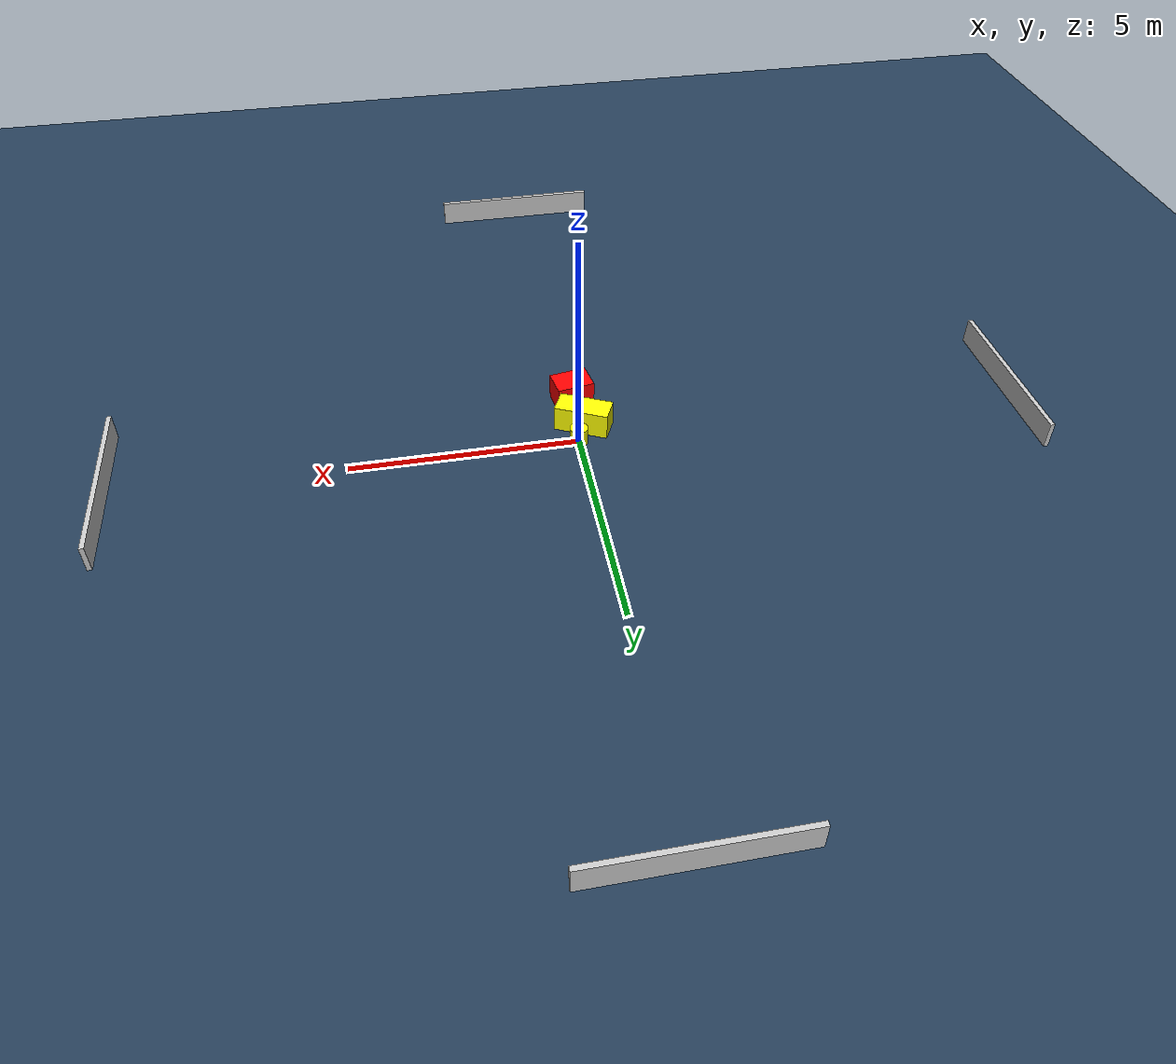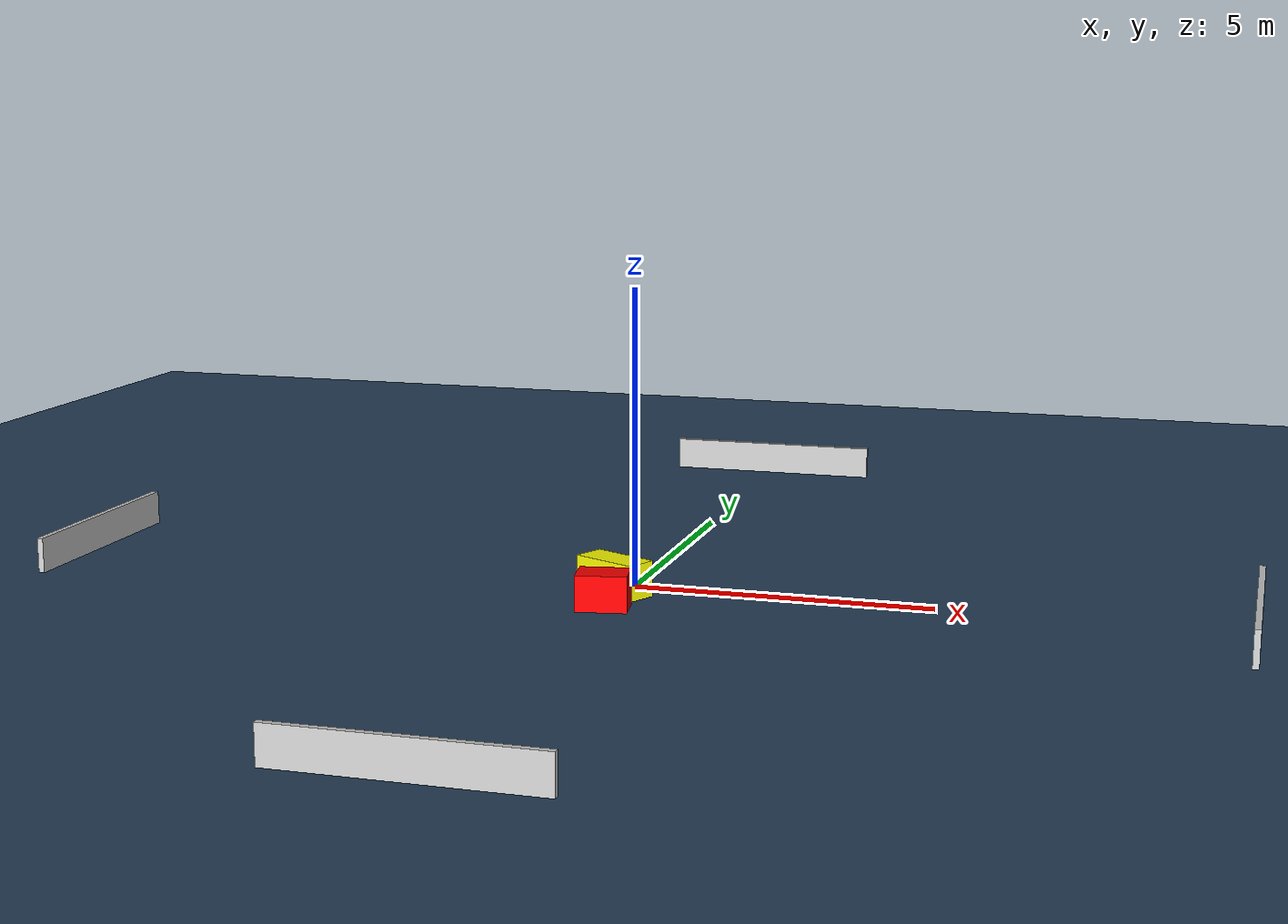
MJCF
<?xml version="1.0" ?>
<mujoco model="generated_environment">
  <option timestep="0.01" integrator="RK4" cone="elliptic"/>
  <default>
    <geom density="1"/>
  </default>
  <asset>
    <texture builtin="gradient" height="3072" name="skybox" rgb1="0.3 0.5 0.7" rgb2="0 0 0" type="skybox" width="512"/>
    <texture builtin="checker" height="300" name="groundplane" rgb1="0.2 0.3 0.4" rgb2="0.1 0.2 0.3" type="2d" width="300"/>
    <material name="groundplane" reflectance="0.2" texrepeat="5 5" texture="groundplane"/>
  </asset>
  <worldbody>
    <light dir="0 0 -1" directional="true" pos="0 0 1.5"/>
    <geom condim="3" friction="0.5 0.005 0.001" material="groundplane" name="floor" pos="0 0 0" size="0 0 0.05" type="plane"/>
    <body name="walls">
      <geom name="wall_1" condim="4" pos="-10.0 0.0 0.3" rgba="0.800000011920929 0.800000011920929 0.800000011920929 1.0" size="0.05 2.0 0.3" type="box"/>
      <geom name="wall_2" condim="4" pos="10.0 0.0 0.3" rgba="0.800000011920929 0.800000011920929 0.800000011920929 1.0" size="0.05 2.0 0.3" type="box"/>
      <geom name="wall_3" condim="4" pos="0.0 -10.0 0.3" rgba="0.800000011920929 0.800000011920929 0.800000011920929 1.0" size="2.0 0.05 0.3" type="box"/>
      <geom name="wall_4" condim="4" pos="0.0 10.0 0.3" rgba="0.800000011920929 0.800000011920929 0.800000011920929 1.0" size="2.0 0.05 0.3" type="box"/>
    </body>
    <body name="robot">
      <joint name="joint_x" type="slide" pos="0 0 0" axis="1 0 0"/>
      <joint name="joint_y" type="slide" pos="0 0 0" axis="0 1 0"/>
      <geom name="robot" type="cylinder" pos="0.0 0.0 0.2" size="0.2 0.2 0.0" mass="5.0" friction="1.0 0.005 0.0001" condim="4" rgba="1.0 1.0 0.0 1.0"/>
    </body>
    <body name="obstacle_1_movable">
      <geom name="obstacle_1_movable" condim="4" pos="-0.20630011747778185 -0.5034252041314741 0.3" euler="0 0 244.13049704906118" friction="0.0 0.005 0.001" rgba="1.0 1.0 0.0 1.0" size="0.2724285468193893 0.5978795730549482 0.3" type="box" mass="0.1"/>
      <joint type="free"/>
    </body>
    <body name="obstacle_2_static">
      <geom name="obstacle_2_static" condim="4" pos="-0.10741742197285871 -1.453061974756176 0.3" euler="0 0 99.43885636057848" friction="0.0 0.005 0.001" rgba="1.0 0.0 0.0 1.0" size="0.30762046463715764 0.421526757078844 0.3" type="box"/>
    </body>
  </worldbody>
  <actuator>
    <motor name="actuator_x" joint="joint_x" gear="1" ctrlrange="-1 1"/>
    <motor name="actuator_y" joint="joint_y" gear="1" ctrlrange="-1 1"/>
  </actuator>
</mujoco>
